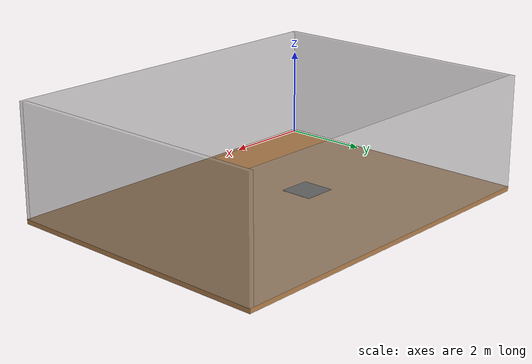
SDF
<sdf version="1.6">
 <world name="default">
  <light name="sun" type="directional">
   <pose>0 0 10 0 -0 0</pose>
   <diffuse>0.8 0.8 0.8 1</diffuse>
   <specular>0.2 0.2 0.2 1</specular>
   <attenuation>
    <range>1000</range>
    <constant>0.9</constant>
    <linear>0.01</linear>
    <quadratic>0.001</quadratic>
   </attenuation>
   <direction>-0.5 0.1 -0.9</direction>
  </light>
  <physics name="default_physics" default="0" type="ode">
   <ode>
    <solver>
     <type>quick</type>
     <iters>10</iters>
     <sor>1.3</sor>
     <use_dynamic_moi_rescaling>0</use_dynamic_moi_rescaling>
    </solver>
    <constraints>
     <cfm>0</cfm>
     <erp>0.2</erp>
     <contact_max_correcting_vel>100</contact_max_correcting_vel>
     <contact_surface_layer>0.001</contact_surface_layer>
    </constraints>
   </ode>
   <max_step_size>0.004</max_step_size>
   <real_time_factor>1</real_time_factor>
   <real_time_update_rate>250</real_time_update_rate>
  </physics>
  <model name="box_1">
   <pose>4.05 -0.05 1.25 0 -0 0</pose>
   <static>1</static>
   <link name="link">
    <collision name="collision"><geometry><box><size>8.1 0.1 2.5</size></box></geometry></collision>
    <visual name="visual">
     <geometry><box><size>8.1 0.1 2.5</size></box></geometry>
     <material>
      <script><name>Gazebo/GreyTransparent</name><uri>file://media/materials/scripts/gazebo.material</uri></script>
     </material>
    </visual>
   </link>
  </model>
  <model name="box_2">
   <pose>8.05 3.05 1.25 0 -0 0</pose>
   <static>1</static>
   <link name="link">
    <collision name="collision"><geometry><box><size>0.1 6.1 2.5</size></box></geometry></collision>
    <visual name="visual">
     <geometry><box><size>0.1 6.1 2.5</size></box></geometry>
     <material>
      <script><name>Gazebo/GreyTransparent</name><uri>file://media/materials/scripts/gazebo.material</uri></script>
     </material>
    </visual>
   </link>
  </model>
  <model name="box_3">
   <pose>3.95 6.05 1.25 0 -0 0</pose>
   <static>1</static>
   <link name="link">
    <collision name="collision"><geometry><box><size>8.1 0.1 2.5</size></box></geometry></collision>
    <visual name="visual">
     <geometry><box><size>8.1 0.1 2.5</size></box></geometry>
     <material>
      <script><name>Gazebo/GreyTransparent</name><uri>file://media/materials/scripts/gazebo.material</uri></script>
     </material>
    </visual>
   </link>
  </model>
  <model name="box_4">
   <pose>-0.05 2.95 1.25 0 -0 0</pose>
   <static>1</static>
   <link name="link">
    <collision name="collision"><geometry><box><size>0.1 6.1 2.5</size></box></geometry></collision>
    <visual name="visual">
     <geometry><box><size>0.1 6.1 2.5</size></box></geometry>
     <material>
      <script><name>Gazebo/GreyTransparent</name><uri>file://media/materials/scripts/gazebo.material</uri></script>
     </material>
    </visual>
   </link>
  </model>
  <model name="box_5">
   <pose>4 3 -0.05 0 -0 0</pose>
   <static>1</static>
   <link name="link">
    <collision name="collision"><geometry><box><size>8.2 6.2 0.1</size></box></geometry></collision>
    <visual name="visual">
     <geometry><box><size>8.2 6.2 0.1</size></box></geometry>
     <material>
      <script><name>Gazebo/WoodFloor</name><uri>file://media/materials/scripts/gazebo.material</uri></script>
     </material>
    </visual>
   </link>
  </model>
  <gravity>0 0 -9.8066</gravity>
  <magnetic_field>6e-06 2.3e-05 -4.2e-05</magnetic_field>
  <atmosphere type="adiabatic"/>
  <scene><ambient>0.4 0.4 0.4 1</ambient><background>0.7 0.7 0.7 1</background><shadows>1</shadows></scene>
  <audio><device>default</device></audio>
  <spherical_coordinates>
   <surface_model>EARTH_WGS84</surface_model>
   <latitude_deg>0</latitude_deg>
   <longitude_deg>0</longitude_deg>
   <elevation>0</elevation>
   <heading_deg>0</heading_deg>
  </spherical_coordinates>
  <model name="marker">
   <static>1</static>
   <link name="link">
    <collision name="collision"><geometry><box><size>0.75 0.75 0.01</size></box></geometry></collision>
    <visual name="visual">
     <cast_shadows>0</cast_shadows>
     <geometry><box><size>0.75 0.75 0.01</size></box></geometry>
     <material>
      <script>
       <uri>model://marker/materials/scripts</uri>
       <uri>model://marker/materials/textures</uri>
       <name>vrc/asphalt</name>
      </script>
     </material>
    </visual>
   </link>
   <pose>3 3 0 0 -0 1.57</pose>
  </model>
 </world>
</sdf>
